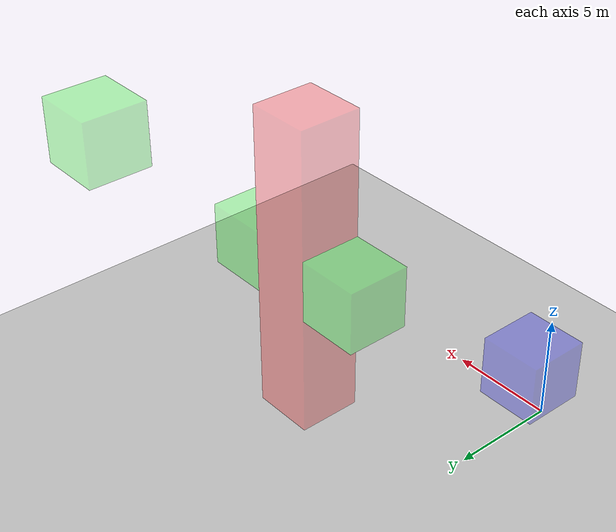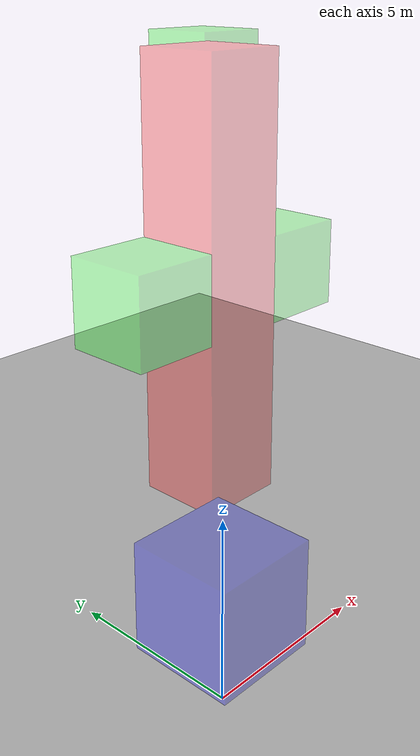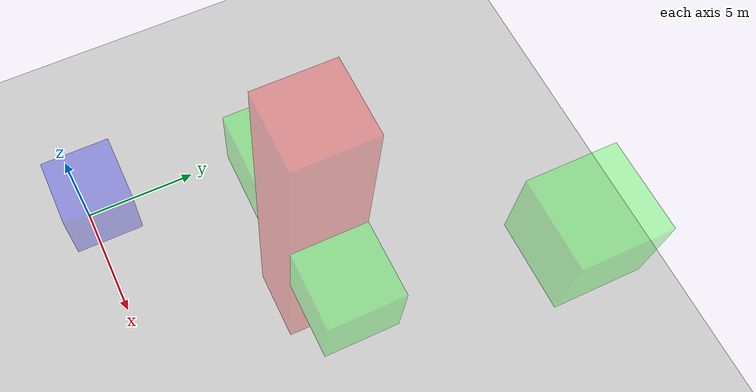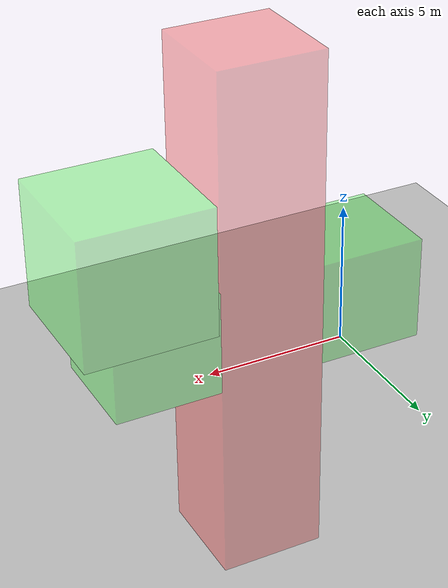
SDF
<?xml version="1.0" ?>
<sdf version="1.5">
  <world name="default">
    <!-- A global light source -->
    <include>
      <uri>model://sun</uri>
    </include>
    <!-- Wireframe Ground Plane -->
    <model name="wireframe_ground">
      <static>true</static>
      <pose>0 0 0 0 0 0</pose>
      <link name="link">
        <collision name="collision">
          <geometry>
            <plane>
              <normal>0 0 1</normal>
              <size>100 100</size>
            </plane>
          </geometry>
        </collision>
        <visual name="visual">
          <geometry>
            <plane>
              <normal>0 0 1</normal>
              <size>100 100</size>
            </plane>
          </geometry>
          <!-- Wireframe Style Material -->
          <material>
            <ambient>0.8 0.8 0.8 1.0</ambient> <!-- Light Gray for wireframe -->
            <diffuse>0.8 0.8 0.8 1.0</diffuse>
            <specular>0.1 0.1 0.1 1.0</specular>
          </material>
          <!-- Add a line style for wireframe appearance -->
          <wireframe>true</wireframe>
        </visual>
      </link>
    </model>

    <!-- Physics settings -->
    <physics name='default_physics' default='0' type='ode'>
      <gravity>0 0 -9.8066</gravity>
      <ode>
        <solver>
          <type>quick</type>
          <iters>10</iters>
          <sor>1.3</sor>
          <use_dynamic_moi_rescaling>0</use_dynamic_moi_rescaling>
        </solver>
        <constraints>
          <cfm>0</cfm>
          <erp>0.2</erp>
          <contact_max_correcting_vel>100</contact_max_correcting_vel>
          <contact_surface_layer>0.001</contact_surface_layer>
        </constraints>
      </ode>
      <max_step_size>0.004</max_step_size>
      <real_time_factor>1</real_time_factor>
      <real_time_update_rate>250</real_time_update_rate>
      <magnetic_field>6.0e-6 2.3e-5 -4.2e-5</magnetic_field>
    </physics>

    <!-- Cuboidal Obstacles with adjusted positions -->
    <model name="obstacle_1">
      <static>true</static>
      <!-- Z adjusted to 2 + 1.5 = 3.5 so that bottom of block is at ground level -->
      <pose>0.5 0.5 2.5 0 0 0</pose>
      <link name="link">
        <!-- Remove the collision tag to make the block non-solid -->
        <visual name="visual">
          <geometry>
            <box>
              <size>3 3 3</size>
            </box>
          </geometry>
          <!-- Set the color to green -->
          <material>
            <ambient>0.0 0.0 1.0 0.3</ambient> <!-- Blue color -->
            <diffuse>0.0 0.0 1.0 0.3</diffuse>
            <specular>0.1 0.1 0.1 0.3</specular>
          </material>
        </visual>
      </link>
    </model>

    <model name="obstacle_2">
      <static>true</static>
      <!-- Z adjusted to 6 + 1.5 = 7.5 -->
      <pose>4.5 7.5 7.5 0 0 0</pose>
      <link name="link">
        <!-- Remove the collision tag to make the block non-solid -->
        <visual name="visual">
          <geometry>
            <box>
              <size>3 3 3</size>
            </box>
          </geometry>
          <!-- Set the color to green -->
          <material>
            <ambient>0.0 1.0 0.0 0.3</ambient> <!-- Green color -->
            <diffuse>0.0 1.0 0.0 0.3</diffuse>
            <specular>0.1 0.1 0.1 0.3</specular>
          </material>
        </visual>
      </link>
    </model>

    <model name="obstacle_3">
      <static>true</static>
      <!-- Z adjusted to 6 + 1.5 = 7.5 -->
      <pose>10.5 7.5 7.5 0 0 0</pose>
      <link name="link">
        <!-- Remove the collision tag to make the block non-solid -->
        <visual name="visual">
          <geometry>
            <box>
              <size>3 3 3</size>
            </box>
          </geometry>
          <!-- Set the color to green -->
          <material>
            <ambient>0.0 1.0 0.0 0.3</ambient> <!-- Green color -->
            <diffuse>0.0 1.0 0.0 0.3</diffuse>
            <specular>0.1 0.1 0.1 0.3</specular>
          </material>
        </visual>
      </link>
    </model>

    <model name="obstacle_4">
      <static>true</static>
      <!-- Z adjusted to 0 + 7.5 so that the bottom is at the ground -->
      <pose>7.5 7.5 7.5 0 0 0</pose>
      <link name="link">
        <!-- Remove the collision tag to make the block non-solid -->
        <visual name="visual">
          <geometry>
            <box>
              <size>3 3 15</size>
            </box>
          </geometry>
          <!-- Set the color to green -->
          <material>
            <ambient>1.0 0.0 0.0 0.3</ambient> <!-- Red color -->
            <diffuse>1.0 0.0 0.0 0.3</diffuse>
            <specular>0.1 0.1 0.1 0.3</specular>
          </material>
        </visual>
      </link>
    </model>

    <model name="obstacle_5">
      <static>true</static>
      <!-- Z adjusted to 12 + 1.5 = 13.5 -->
      <pose>13.5 13.5 13.5 0 0 0</pose>
      <link name="link">
        <!-- Remove the collision tag to make the block non-solid -->
        <visual name="visual">
          <geometry>
            <box>
              <size>3 3 3</size>
            </box>
          </geometry>
          <!-- Set the color to green -->
          <material>
            <ambient>0.0 1.0 0.0 0.3</ambient> <!-- Green color -->
            <diffuse>0.0 1.0 0.0 0.3</diffuse>
            <specular>0.1 0.1 0.1 0.3</specular>
          </material>
        </visual>
      </link>
    </model>

  </world>
</sdf>
